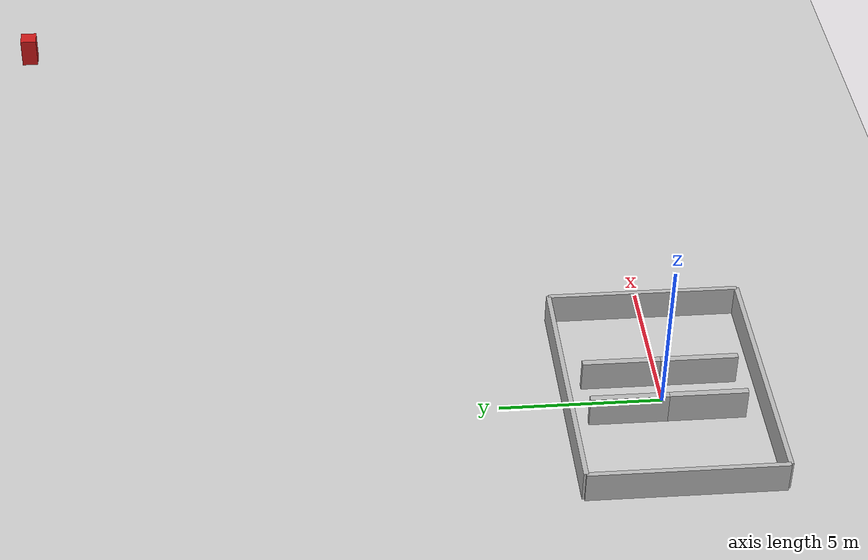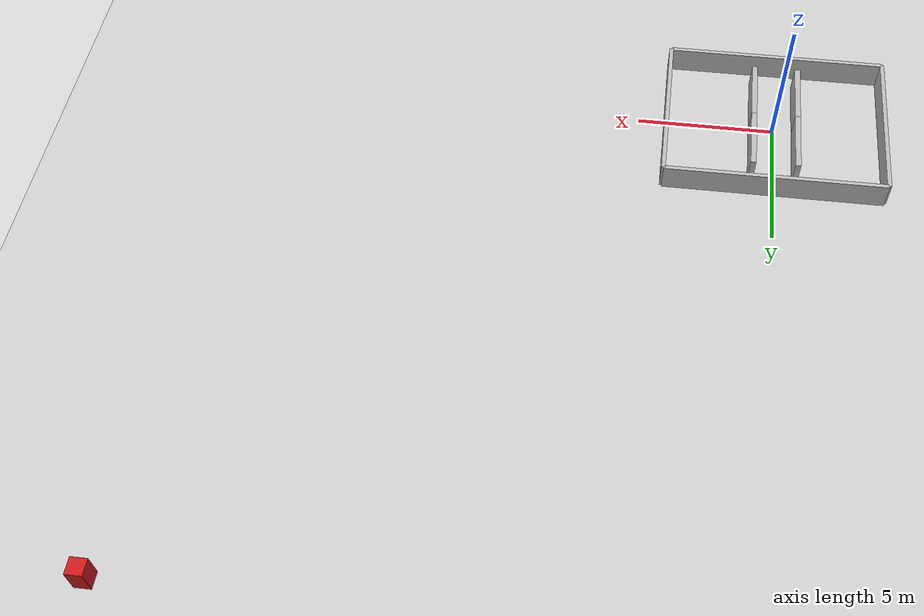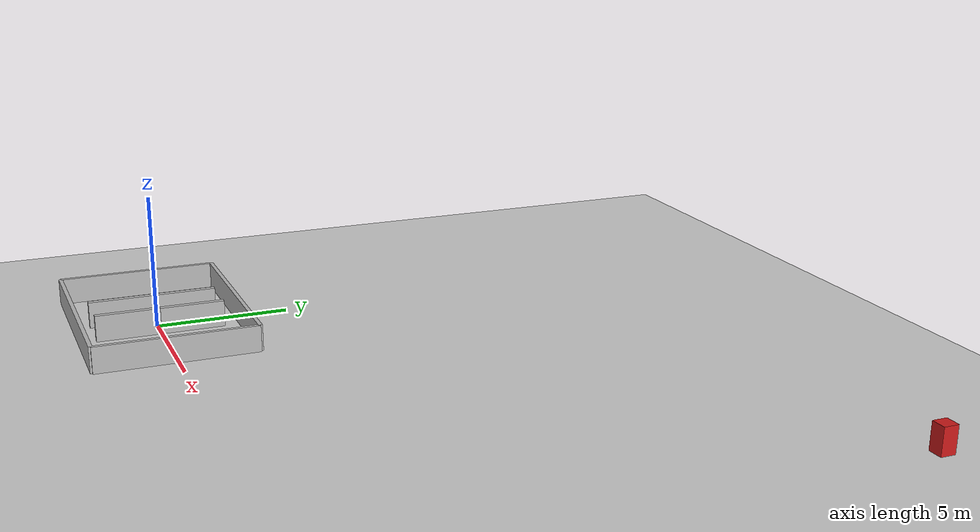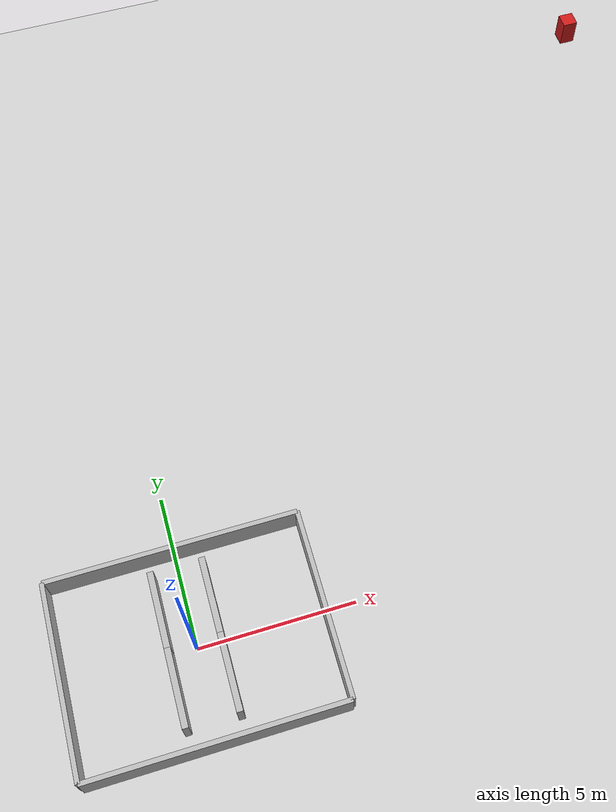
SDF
<?xml version="1.0" ?><sdf version="1.9"><world name="recovernav"><physics name="default" type="gz-physics-dartsim"><max_step_size>0.001</max_step_size><real_time_factor>1</real_time_factor></physics><plugin filename="gz-sim-physics-system" name="gz::sim::systems::Physics"/><plugin filename="gz-sim-user-commands-system" name="gz::sim::systems::UserCommands"/><plugin filename="gz-sim-scene-broadcaster-system" name="gz::sim::systems::SceneBroadcaster"/><include><uri>model://sun</uri></include><include><uri>model://ground_plane</uri></include><model name="left"><static>true</static><pose>-4 0 .5 0 0 0</pose><link name="l"><collision name="c"><geometry><box><size>.15 6 1</size></box></geometry></collision><visual name="v"><geometry><box><size>.15 6 1</size></box></geometry></visual></link></model><model name="right"><static>true</static><pose>4 0 .5 0 0 0</pose><link name="l"><collision name="c"><geometry><box><size>.15 6 1</size></box></geometry></collision><visual name="v"><geometry><box><size>.15 6 1</size></box></geometry></visual></link></model><model name="bottom"><static>true</static><pose>0 -3 .5 0 0 0</pose><link name="l"><collision name="c"><geometry><box><size>8 .15 1</size></box></geometry></collision><visual name="v"><geometry><box><size>8 .15 1</size></box></geometry></visual></link></model><model name="top"><static>true</static><pose>0 3 .5 0 0 0</pose><link name="l"><collision name="c"><geometry><box><size>8 .15 1</size></box></geometry></collision><visual name="v"><geometry><box><size>8 .15 1</size></box></geometry></visual></link></model><model name="a"><static>true</static><pose>-.8 1.2 .5 0 0 0</pose><link name="l"><collision name="c"><geometry><box><size>.2 2.4 1</size></box></geometry></collision><visual name="v"><geometry><box><size>.2 2.4 1</size></box></geometry></visual></link></model><model name="b"><static>true</static><pose>-.8 -1.2 .5 0 0 0</pose><link name="l"><collision name="c"><geometry><box><size>.2 2.4 1</size></box></geometry></collision><visual name="v"><geometry><box><size>.2 2.4 1</size></box></geometry></visual></link></model><model name="c"><static>true</static><pose>.8 1.2 .5 0 0 0</pose><link name="l"><collision name="c"><geometry><box><size>.2 2.4 1</size></box></geometry></collision><visual name="v"><geometry><box><size>.2 2.4 1</size></box></geometry></visual></link></model><model name="d"><static>true</static><pose>.8 -1.2 .5 0 0 0</pose><link name="l"><collision name="c"><geometry><box><size>.2 2.4 1</size></box></geometry></collision><visual name="v"><geometry><box><size>.2 2.4 1</size></box></geometry></visual></link></model><model name="dynamic_obstacle"><static>false</static><pose>20 20 .5 0 0 0</pose><link name="l"><inertial><mass>20</mass><inertia><ixx>1</ixx><iyy>1</iyy><izz>1</izz></inertia></inertial><collision name="c"><geometry><box><size>.55 .55 1</size></box></geometry></collision><visual name="v"><geometry><box><size>.55 .55 1</size></box></geometry><material><ambient>.8 .1 .1 1</ambient></material></visual></link></model></world></sdf>
